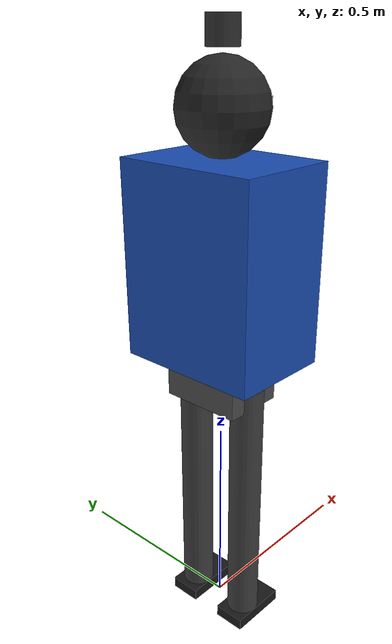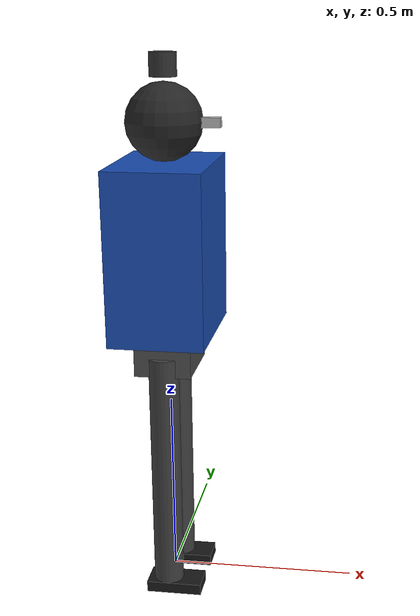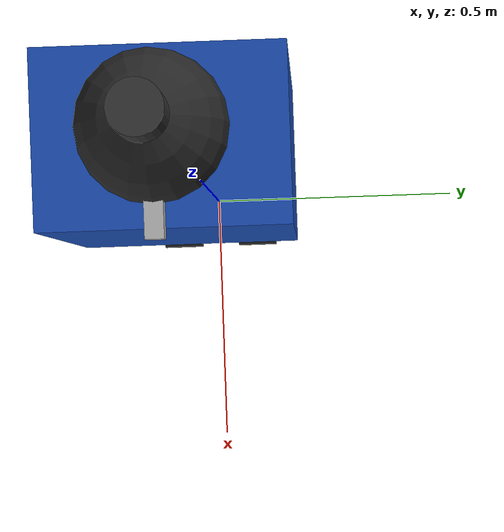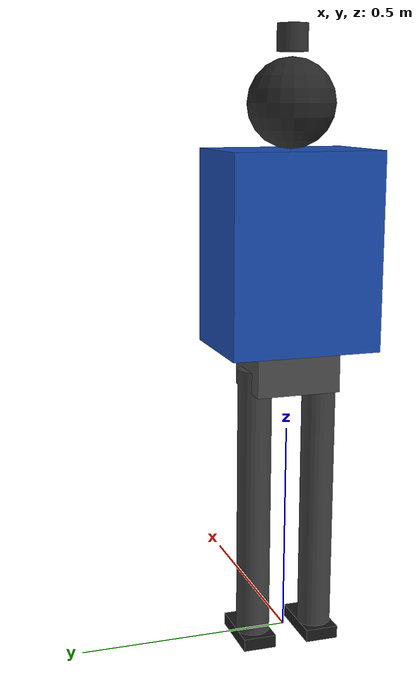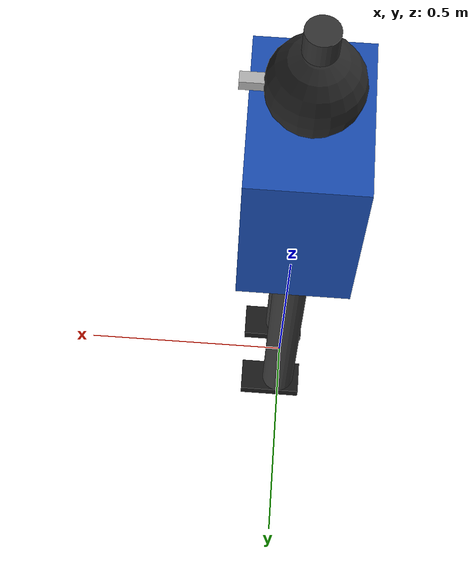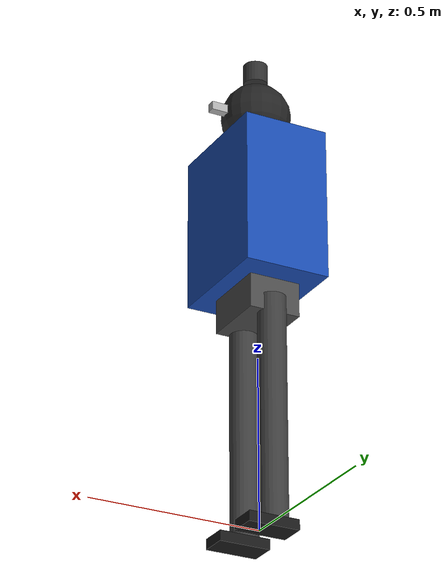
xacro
<?xml version="1.0"?>
<robot name="g1" xmlns:xacro="http://www.ros.org/wiki/xacro">

  <!-- Include sensor macros -->
  <xacro:include filename="$(find g1_description)/urdf/g1_lidar.xacro"/>
  <xacro:include filename="$(find g1_description)/urdf/g1_camera.xacro"/>

  <!-- Constants                                    -->
  <!-- Note: 'pi' is a built-in xacro constant, no need to redefine -->
  <!-- G1 body dimensions (approximate) -->
  <xacro:property name="torso_width"  value="0.35"/>
  <xacro:property name="torso_depth"  value="0.25"/>
  <xacro:property name="torso_height" value="0.45"/>
  <xacro:property name="head_radius"  value="0.10"/>
  <xacro:property name="leg_radius"   value="0.04"/>
  <xacro:property name="leg_length"   value="0.65"/>
  <xacro:property name="foot_size"    value="0.15"/>
  <xacro:property name="body_mass"    value="35.0"/>

  <!-- base_footprint: ground-level reference       -->
  <link name="base_footprint"/>

  <!-- base_link: center of robot at hip height     -->
  <link name="base_link">
    <visual>
      <geometry>
        <box size="0.15 0.20 0.10"/>
      </geometry>
      <material name="hip_grey">
        <color rgba="0.3 0.3 0.3 1.0"/>
      </material>
      <origin xyz="0 0 0" rpy="0 0 0"/>
    </visual>
    <collision>
      <geometry>
        <box size="0.15 0.20 0.10"/>
      </geometry>
    </collision>
    <inertial>
      <mass value="5.0"/>
      <inertia ixx="0.05" ixy="0" ixz="0" iyy="0.05" iyz="0" izz="0.05"/>
    </inertial>
  </link>

  <joint name="base_footprint_joint" type="fixed">
    <parent link="base_footprint"/>
    <child link="base_link"/>
    <!-- base_link is at hip height (~0.65m above ground) -->
    <origin xyz="0 0 0.65" rpy="0 0 0"/>
  </joint>

  <!-- Torso                                        -->
  <link name="torso_link">
    <visual>
      <geometry>
        <box size="${torso_depth} ${torso_width} ${torso_height}"/>
      </geometry>
      <material name="unitree_blue">
        <color rgba="0.1 0.3 0.7 1.0"/>
      </material>
    </visual>
    <collision>
      <geometry>
        <box size="${torso_depth} ${torso_width} ${torso_height}"/>
      </geometry>
    </collision>
    <inertial>
      <mass value="15.0"/>
      <inertia ixx="0.3" ixy="0" ixz="0" iyy="0.3" iyz="0" izz="0.2"/>
    </inertial>
  </link>

  <joint name="torso_joint" type="fixed">
    <parent link="base_link"/>
    <child link="torso_link"/>
    <origin xyz="0 0 ${torso_height/2 + 0.05}" rpy="0 0 0"/>
  </joint>

  <!-- Head                                         -->
  <link name="head_link">
    <visual>
      <geometry>
        <sphere radius="${head_radius}"/>
      </geometry>
      <material name="head_dark">
        <color rgba="0.15 0.15 0.15 1.0"/>
      </material>
    </visual>
    <collision>
      <geometry>
        <sphere radius="${head_radius}"/>
      </geometry>
    </collision>
    <inertial>
      <mass value="2.0"/>
      <inertia ixx="0.005" ixy="0" ixz="0" iyy="0.005" iyz="0" izz="0.005"/>
    </inertial>
  </link>

  <joint name="head_joint" type="fixed">
    <parent link="torso_link"/>
    <child link="head_link"/>
    <origin xyz="0 0 ${torso_height/2 + head_radius}" rpy="0 0 0"/>
  </joint>

  <!-- Legs (simplified — two cylinders)            -->
  <!-- Left leg -->
  <link name="left_leg_link">
    <visual>
      <geometry>
        <cylinder radius="${leg_radius}" length="${leg_length}"/>
      </geometry>
      <material name="leg_grey">
        <color rgba="0.25 0.25 0.25 1.0"/>
      </material>
    </visual>
    <collision>
      <geometry>
        <cylinder radius="${leg_radius}" length="${leg_length}"/>
      </geometry>
    </collision>
    <inertial>
      <mass value="4.0"/>
      <inertia ixx="0.15" ixy="0" ixz="0" iyy="0.15" iyz="0" izz="0.005"/>
    </inertial>
  </link>

  <joint name="left_leg_joint" type="fixed">
    <parent link="base_link"/>
    <child link="left_leg_link"/>
    <origin xyz="0 0.08 ${-leg_length/2}" rpy="0 0 0"/>
  </joint>

  <!-- Right leg -->
  <link name="right_leg_link">
    <visual>
      <geometry>
        <cylinder radius="${leg_radius}" length="${leg_length}"/>
      </geometry>
      <material name="leg_grey">
        <color rgba="0.25 0.25 0.25 1.0"/>
      </material>
    </visual>
    <collision>
      <geometry>
        <cylinder radius="${leg_radius}" length="${leg_length}"/>
      </geometry>
    </collision>
    <inertial>
      <mass value="4.0"/>
      <inertia ixx="0.15" ixy="0" ixz="0" iyy="0.15" iyz="0" izz="0.005"/>
    </inertial>
  </link>

  <joint name="right_leg_joint" type="fixed">
    <parent link="base_link"/>
    <child link="right_leg_link"/>
    <origin xyz="0 -0.08 ${-leg_length/2}" rpy="0 0 0"/>
  </joint>

  <!-- Left foot -->
  <link name="left_foot_link">
    <visual>
      <geometry>
        <box size="${foot_size} 0.08 0.03"/>
      </geometry>
      <material name="foot_black">
        <color rgba="0.1 0.1 0.1 1.0"/>
      </material>
    </visual>
    <collision>
      <geometry>
        <box size="${foot_size} 0.08 0.03"/>
      </geometry>
    </collision>
    <inertial>
      <mass value="0.5"/>
      <inertia ixx="0.001" ixy="0" ixz="0" iyy="0.001" iyz="0" izz="0.001"/>
    </inertial>
  </link>

  <joint name="left_foot_joint" type="fixed">
    <parent link="left_leg_link"/>
    <child link="left_foot_link"/>
    <origin xyz="0.02 0 ${-leg_length/2 - 0.015}" rpy="0 0 0"/>
  </joint>

  <!-- Right foot -->
  <link name="right_foot_link">
    <visual>
      <geometry>
        <box size="${foot_size} 0.08 0.03"/>
      </geometry>
      <material name="foot_black">
        <color rgba="0.1 0.1 0.1 1.0"/>
      </material>
    </visual>
    <collision>
      <geometry>
        <box size="${foot_size} 0.08 0.03"/>
      </geometry>
    </collision>
    <inertial>
      <mass value="0.5"/>
      <inertia ixx="0.001" ixy="0" ixz="0" iyy="0.001" iyz="0" izz="0.001"/>
    </inertial>
  </link>

  <joint name="right_foot_joint" type="fixed">
    <parent link="right_leg_link"/>
    <child link="right_foot_link"/>
    <origin xyz="0.02 0 ${-leg_length/2 - 0.015}" rpy="0 0 0"/>
  </joint>

  <!-- Sensors                                      -->

  <!-- Livox Mid-360 LiDAR — mounted on top of head -->
  <xacro:g1_lidar parent_link="head_link"
                  xyz="0 0 ${head_radius + 0.04}"
                  rpy="0 0 0"/>

  <!-- RealSense D435i — mounted on front of head -->
  <xacro:g1_camera parent_link="head_link"
                   xyz="${head_radius} 0 0"
                   rpy="0 0 0"/>

  <!-- Gazebo: PlanarMove plugin (Stage A)          -->
  <!-- Allows /cmd_vel control without full bipedal -->
  <!-- walking simulation. Remove for Stage B.      -->
  <gazebo>
    <plugin filename="gz-sim-odometry-publisher-system"
            name="gz::sim::systems::OdometryPublisher">
      <odom_topic>odom</odom_topic>
      <odom_frame>odom</odom_frame>
      <robot_base_frame>base_footprint</robot_base_frame>
      <odom_publish_frequency>50</odom_publish_frequency>
      <dimensions>3</dimensions>
    </plugin>
  </gazebo>

  <gazebo>
    <plugin filename="gz-sim-triggered-publisher-system"
            name="gz::sim::systems::TriggeredPublisher"/>
  </gazebo>

  <!-- Velocity control: subscribes to /cmd_vel and moves the base -->
  <gazebo>
    <plugin filename="gz-sim-velocity-control-system"
            name="gz::sim::systems::VelocityControl">
      <topic>cmd_vel</topic>
      <initial_linear>0 0 0</initial_linear>
      <initial_angular>0 0 0</initial_angular>
    </plugin>
  </gazebo>

  <!-- Joint state publisher for Gazebo -->
  <gazebo>
    <plugin filename="gz-sim-joint-state-publisher-system"
            name="gz::sim::systems::JointStatePublisher">
      <topic>joint_states</topic>
    </plugin>
  </gazebo>

</robot>

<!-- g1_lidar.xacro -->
<robot xmlns:xacro="http://www.ros.org/wiki/xacro">

  <xacro:macro name="g1_lidar" params="parent_link xyz:='0.0 0.0 0.15' rpy:='0 0 0'">

    <!-- LiDAR visual link -->
    <link name="lidar_link">
      <visual>
        <geometry>
          <cylinder radius="0.035" length="0.06"/>
        </geometry>
        <material name="lidar_dark_grey">
          <color rgba="0.2 0.2 0.2 1.0"/>
        </material>
      </visual>
      <collision>
        <geometry>
          <cylinder radius="0.035" length="0.06"/>
        </geometry>
      </collision>
      <inertial>
        <mass value="0.265"/>
        <inertia ixx="0.0001" ixy="0" ixz="0" iyy="0.0001" iyz="0" izz="0.0001"/>
      </inertial>
    </link>

    <!-- Fixed joint: mount LiDAR on parent (top of torso) -->
    <joint name="lidar_joint" type="fixed">
      <parent link="${parent_link}"/>
      <child link="lidar_link"/>
      <origin xyz="${xyz}" rpy="${rpy}"/>
    </joint>

    <!-- Gazebo Sim sensor plugin (Fortress / Harmonic gpu_lidar) -->
    <gazebo reference="lidar_link">
      <sensor name="livox_mid360" type="gpu_lidar">
        <always_on>true</always_on>
        <visualize>true</visualize>
        <update_rate>10</update_rate>
        <topic>lidar/points</topic>
        <gz_frame_id>lidar_link</gz_frame_id>
        <lidar>
          <scan>
            <horizontal>
              <samples>1800</samples>
              <resolution>1</resolution>
              <min_angle>-3.14159265</min_angle>
              <max_angle>3.14159265</max_angle>
            </horizontal>
            <vertical>
              <samples>16</samples>
              <resolution>1</resolution>
              <min_angle>-0.5149</min_angle>
              <max_angle>0.5149</max_angle>
            </vertical>
          </scan>
          <range>
            <min>0.1</min>
            <max>40.0</max>
            <resolution>0.01</resolution>
          </range>
          <noise>
            <type>gaussian</type>
            <mean>0.0</mean>
            <stddev>0.01</stddev>
          </noise>
        </lidar>
      </sensor>
    </gazebo>

  </xacro:macro>

</robot>

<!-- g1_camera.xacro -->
<!--
  Simulated Intel RealSense D435i camera macro for the Unitree G1.
  Matches D435i specs:
    - RGB: 69.4° HFOV, 640x480 @ 30fps
    - Depth: 87° HFOV, 640x480 @ 30fps
    - Range: 0.3m – 10m
-->
<robot xmlns:xacro="http://www.ros.org/wiki/xacro">

  <xacro:macro name="g1_camera" params="parent_link xyz:='0.05 0.0 0.12' rpy:='0 0 0'">

    <!-- Camera body link -->
    <link name="camera_link">
      <visual>
        <geometry>
          <box size="0.09 0.025 0.025"/>
        </geometry>
        <material name="camera_silver">
          <color rgba="0.7 0.7 0.7 1.0"/>
        </material>
      </visual>
      <collision>
        <geometry>
          <box size="0.09 0.025 0.025"/>
        </geometry>
      </collision>
      <inertial>
        <mass value="0.072"/>
        <inertia ixx="0.00001" ixy="0" ixz="0" iyy="0.00001" iyz="0" izz="0.00001"/>
      </inertial>
    </link>

    <!-- Optical frame (Z-forward convention for camera data) -->
    <link name="camera_optical_link"/>
    <joint name="camera_optical_joint" type="fixed">
      <parent link="camera_link"/>
      <child link="camera_optical_link"/>
      <!-- Rotate from URDF convention (X-fwd) to optical (Z-fwd) -->
      <origin xyz="0 0 0" rpy="${-pi/2} 0 ${-pi/2}"/>
    </joint>

    <!-- Fixed joint: mount camera on parent (head/torso) -->
    <joint name="camera_joint" type="fixed">
      <parent link="${parent_link}"/>
      <child link="camera_link"/>
      <origin xyz="${xyz}" rpy="${rpy}"/>
    </joint>

    <!-- Gazebo RGB camera sensor -->
    <gazebo reference="camera_link">
      <sensor name="d435i_rgb" type="camera">
        <always_on>true</always_on>
        <visualize>false</visualize>
        <update_rate>30</update_rate>
        <topic>camera/color/image_raw</topic>
        <gz_frame_id>camera_optical_link</gz_frame_id>
        <camera>
          <horizontal_fov>1.2112</horizontal_fov>
          <image>
            <width>640</width>
            <height>480</height>
            <format>R8G8B8</format>
          </image>
          <clip>
            <near>0.3</near>
            <far>10.0</far>
          </clip>
          <noise>
            <type>gaussian</type>
            <mean>0.0</mean>
            <stddev>0.007</stddev>
          </noise>
        </camera>
      </sensor>
    </gazebo>

    <!-- Gazebo depth camera sensor -->
    <gazebo reference="camera_link">
      <sensor name="d435i_depth" type="depth_camera">
        <always_on>true</always_on>
        <visualize>false</visualize>
        <update_rate>30</update_rate>
        <topic>camera/depth/image_rect_raw</topic>
        <gz_frame_id>camera_optical_link</gz_frame_id>
        <camera>
          <horizontal_fov>1.5184</horizontal_fov>
          <image>
            <width>640</width>
            <height>480</height>
            <format>R_FLOAT32</format>
          </image>
          <clip>
            <near>0.3</near>
            <far>10.0</far>
          </clip>
          <noise>
            <type>gaussian</type>
            <mean>0.0</mean>
            <stddev>0.005</stddev>
          </noise>
        </camera>
      </sensor>
    </gazebo>

  </xacro:macro>

</robot>
